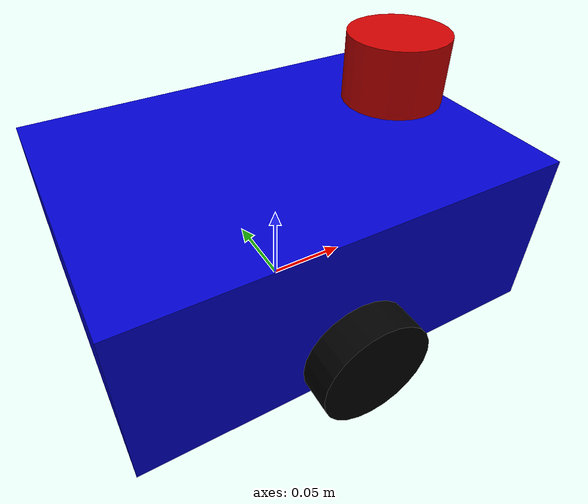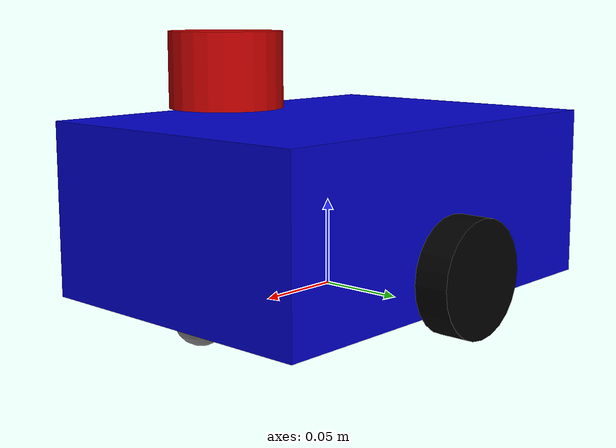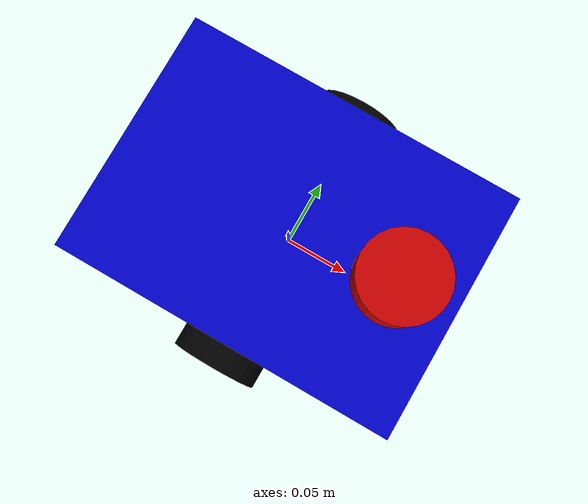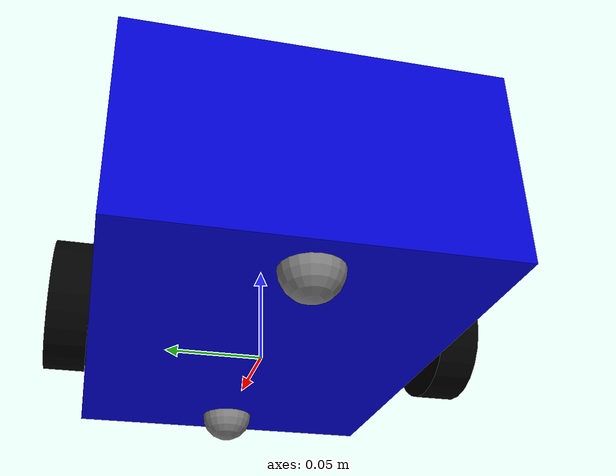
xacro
<?xml version="1.0"?>
<robot name="bumpy7">

  <!-- base_footprint: ground projection of robot center -->
  <link name="bumpy7/base_footprint"/>

  <joint name="base_footprint_to_base_link" type="fixed">
    <parent link="bumpy7/base_footprint"/>
    <child link="bumpy7/base_link"/>
    <origin xyz="0 0 0.05" rpy="0 0 0"/>
  </joint>

  <!-- base_link: main robot body -->
  <link name="bumpy7/base_link">
    <visual>
      <geometry>
        <box size="0.25 0.18 0.10"/>
      </geometry>
      <material name="blue">
        <color rgba="0.0 0.0 0.8 1.0"/>
      </material>
    </visual>
    <collision>
      <geometry>
        <box size="0.25 0.18 0.10"/>
      </geometry>
    </collision>
    <inertial>
      <mass value="2.0"/>
      <inertia ixx="0.01" ixy="0.0" ixz="0.0"
               iyy="0.01" iyz="0.0" izz="0.02"/>
    </inertial>
  </link>

  <!-- Left wheel -->
  <joint name="left_wheel_joint" type="continuous">
    <parent link="bumpy7/base_link"/>
    <child link="bumpy7/left_wheel"/>
    <origin xyz="0.0 0.10 -0.03" rpy="-1.5708 0 0"/>
    <axis xyz="0 0 1"/>
  </joint>

  <link name="bumpy7/left_wheel">
    <visual>
      <geometry>
        <cylinder radius="0.033" length="0.02"/>
      </geometry>
      <material name="black">
        <color rgba="0.0 0.0 0.0 1.0"/>
      </material>
    </visual>
    <collision>
      <geometry>
        <cylinder radius="0.033" length="0.02"/>
      </geometry>
    </collision>
    <inertial>
      <mass value="0.1"/>
      <inertia ixx="0.0001" ixy="0.0" ixz="0.0"
               iyy="0.0001" iyz="0.0" izz="0.0002"/>
    </inertial>
  </link>

  <!-- Right wheel -->
  <joint name="right_wheel_joint" type="continuous">
    <parent link="bumpy7/base_link"/>
    <child link="bumpy7/right_wheel"/>
    <origin xyz="0.0 -0.10 -0.03" rpy="-1.5708 0 0"/>
    <axis xyz="0 0 1"/>
  </joint>

  <link name="bumpy7/right_wheel">
    <visual>
      <geometry>
        <cylinder radius="0.033" length="0.02"/>
      </geometry>
      <material name="black">
        <color rgba="0.0 0.0 0.0 1.0"/>
      </material>
    </visual>
    <collision>
      <geometry>
        <cylinder radius="0.033" length="0.02"/>
      </geometry>
    </collision>
    <inertial>
      <mass value="0.1"/>
      <inertia ixx="0.0001" ixy="0.0" ixz="0.0"
               iyy="0.0001" iyz="0.0" izz="0.0002"/>
    </inertial>
  </link>

  <!-- Front caster -->
  <joint name="front_caster_joint" type="fixed">
    <parent link="bumpy7/base_link"/>
    <child link="bumpy7/front_caster"/>
    <origin xyz="0.10 0.0 -0.05" rpy="0 0 0"/>
  </joint>

  <link name="bumpy7/front_caster">
    <visual>
      <geometry>
        <sphere radius="0.015"/>
      </geometry>
      <material name="gray">
        <color rgba="0.5 0.5 0.5 1.0"/>
      </material>
    </visual>
    <collision>
      <geometry>
        <sphere radius="0.015"/>
      </geometry>
    </collision>
    <inertial>
      <mass value="0.05"/>
      <inertia ixx="0.00001" ixy="0.0" ixz="0.0"
               iyy="0.00001" iyz="0.0" izz="0.00001"/>
    </inertial>
  </link>

  <!-- Rear caster -->
  <joint name="rear_caster_joint" type="fixed">
    <parent link="bumpy7/base_link"/>
    <child link="bumpy7/rear_caster"/>
    <origin xyz="-0.10 0.0 -0.05" rpy="0 0 0"/>
  </joint>

  <link name="bumpy7/rear_caster">
    <visual>
      <geometry>
        <sphere radius="0.015"/>
      </geometry>
      <material name="gray">
        <color rgba="0.5 0.5 0.5 1.0"/>
      </material>
    </visual>
    <collision>
      <geometry>
        <sphere radius="0.015"/>
      </geometry>
    </collision>
    <inertial>
      <mass value="0.05"/>
      <inertia ixx="0.00001" ixy="0.0" ixz="0.0"
               iyy="0.00001" iyz="0.0" izz="0.00001"/>
    </inertial>
  </link>

  <!-- IMU link -->
  <joint name="imu_joint" type="fixed">
    <parent link="bumpy7/base_link"/>
    <child link="bumpy7/imu_link"/>
    <origin xyz="0.0 0.0 0.05" rpy="0 0 0"/>
  </joint>

  <link name="bumpy7/imu_link"/>

  <!-- Lidar link - mounted on top front -->
  <joint name="lidar_joint" type="fixed">
    <parent link="bumpy7/base_link"/>
    <child link="bumpy7/lidar_link"/>
    <origin xyz="0.08 0.0 0.08" rpy="0 0 0"/>
  </joint>

  <link name="bumpy7/lidar_link">
    <visual>
      <geometry>
        <cylinder radius="0.03" length="0.04"/>
      </geometry>
      <material name="red">
        <color rgba="0.8 0.0 0.0 1.0"/>
      </material>
    </visual>
  </link>

</robot>
